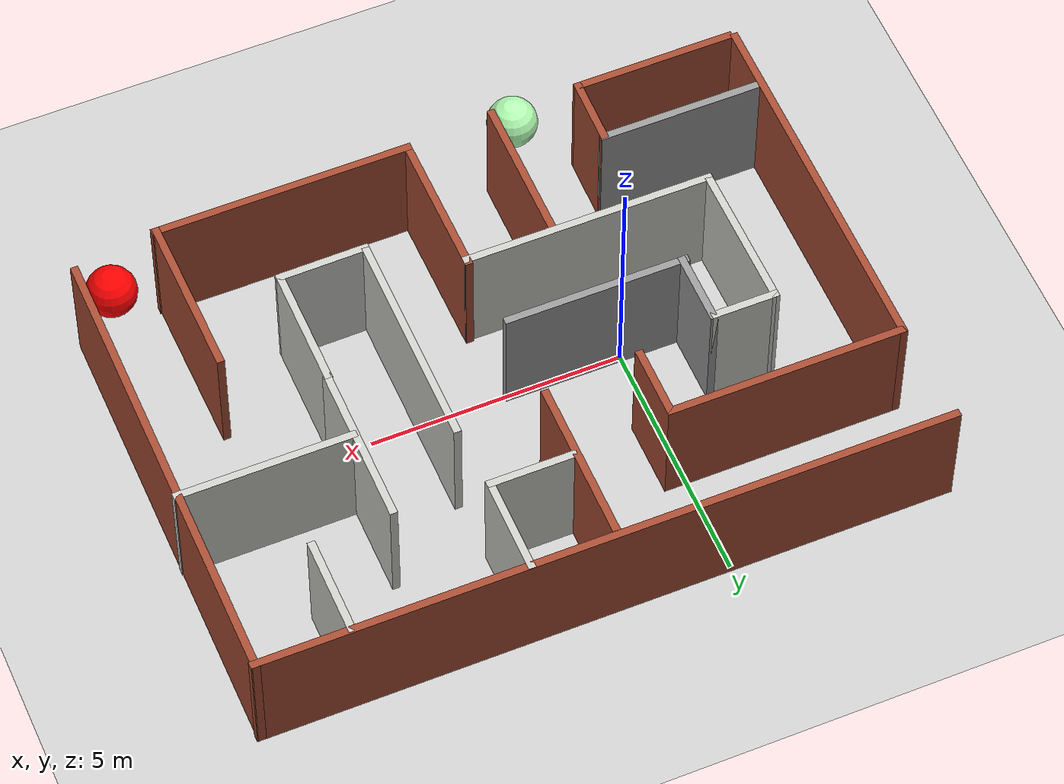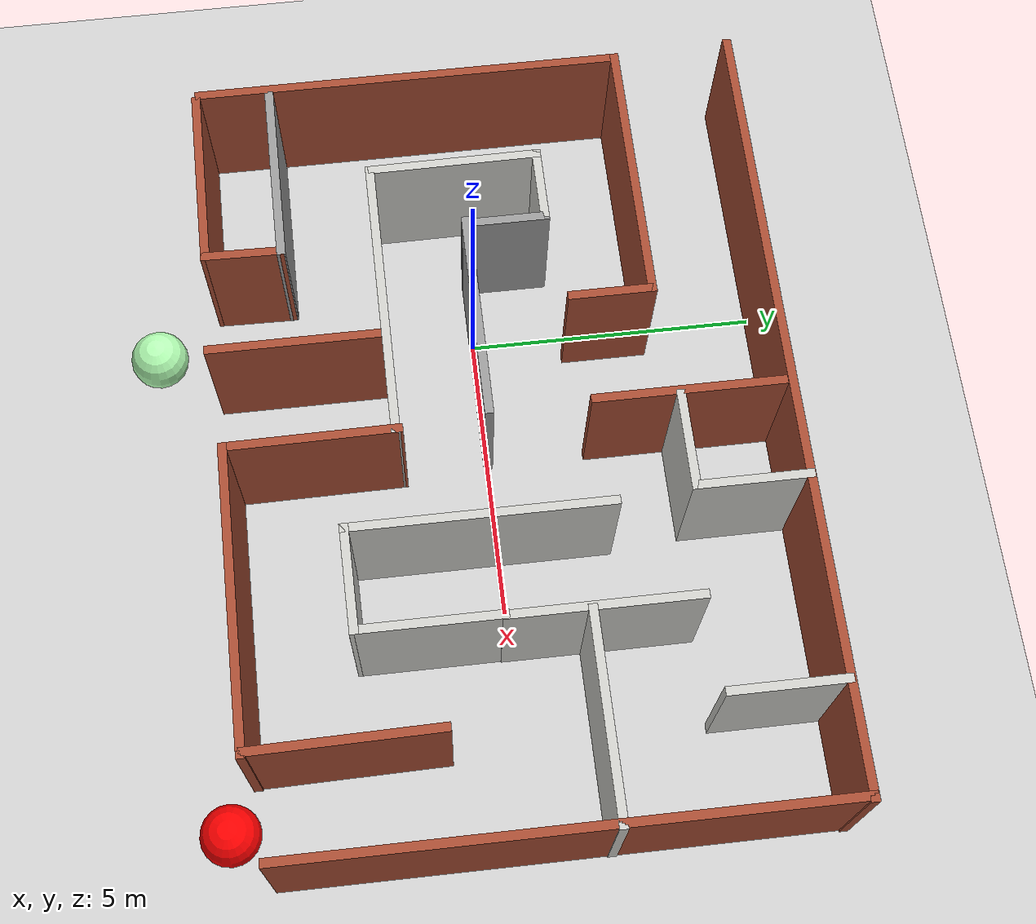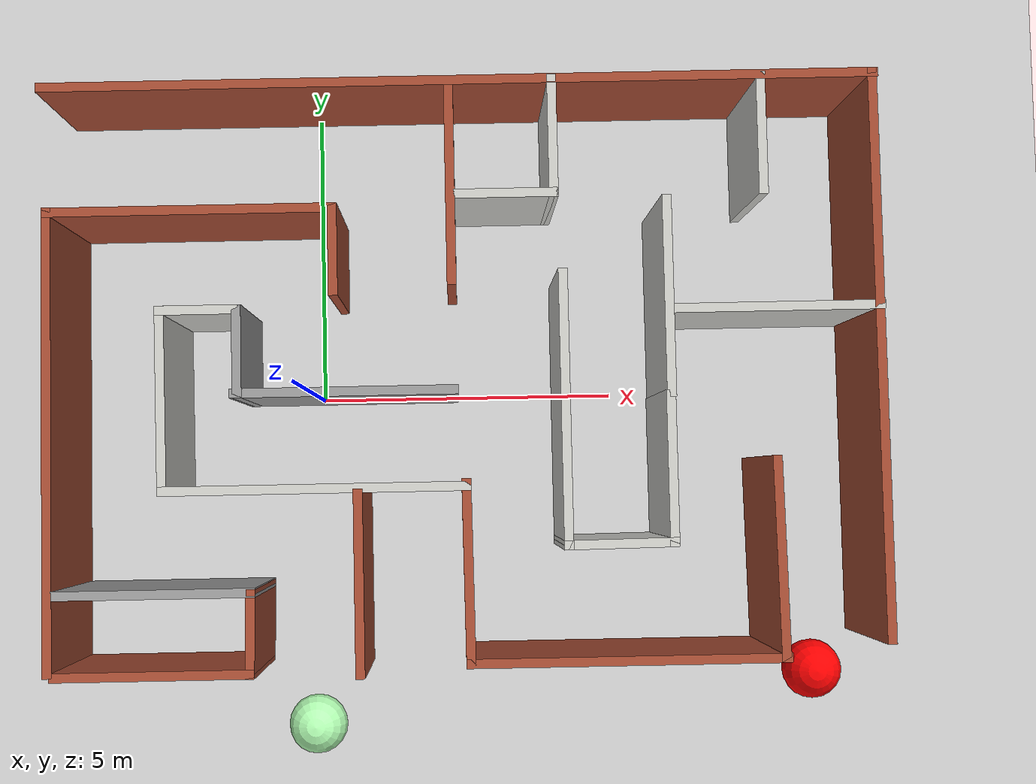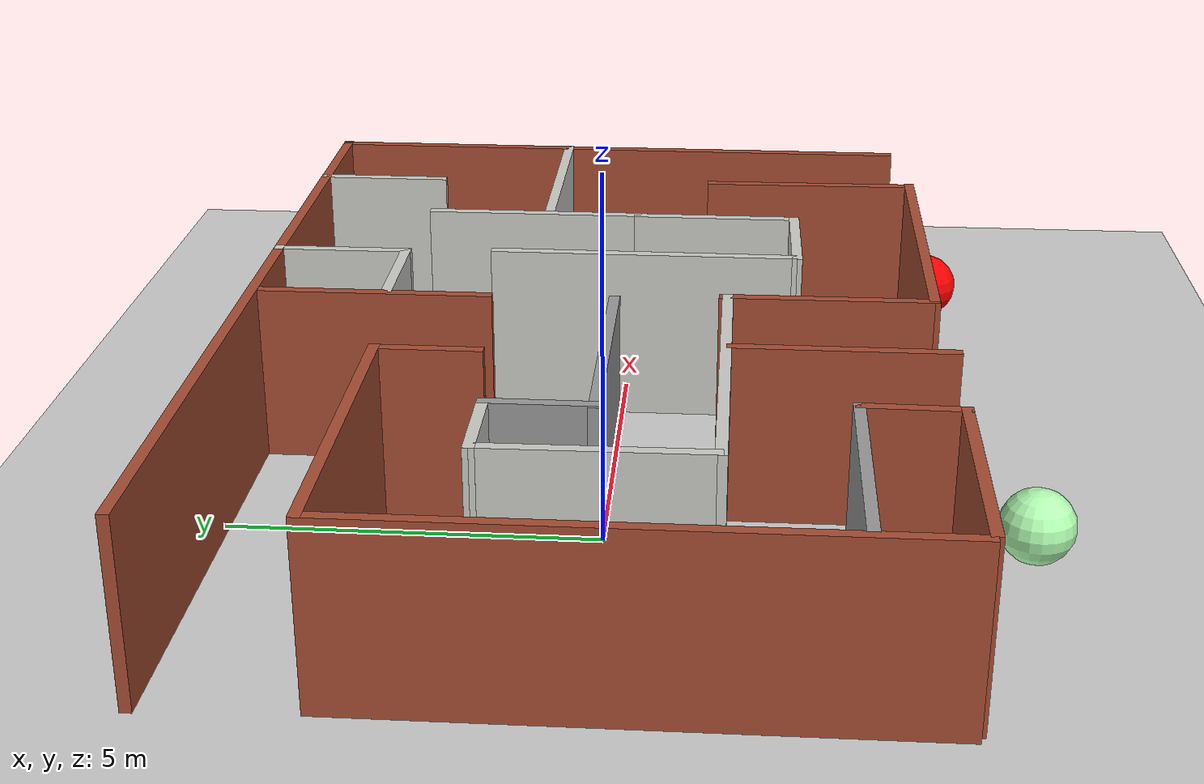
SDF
<sdf version="1.7">
 <world name="default">
  <include><uri>model://sun</uri></include>
  <include><uri>model://ground_plane</uri></include>
  <include><pose>-0.153 -5.549 0.5 0 0 0</pose><uri>model://unit_sphere_green</uri></include>
  <include><pose>8.313 -4.777 0.5 0 0 0</pose><uri>model://unit_sphere_red</uri></include>
  <include><pose>2.417 0.2725 0 0 -0 0</pose><uri>model://wall_maze</uri></include>
 </world>
</sdf>

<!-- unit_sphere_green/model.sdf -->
<sdf version='1.7'>
  <model name='unit_sphere_green'>
    <link name='link'>
      <inertial>
        <mass>1</mass>
        <inertia>
          <ixx>0.1</ixx>
          <ixy>0</ixy>
          <ixz>0</ixz>
          <iyy>0.1</iyy>
          <iyz>0</iyz>
          <izz>0.1</izz>
        </inertia>
        <pose>0 0 0 0 -0 0</pose>
      </inertial>
      <self_collide>0</self_collide>
      <enable_wind>0</enable_wind>
      <kinematic>0</kinematic>
      <pose>0 0 0 0 -0 0</pose>
      <gravity>1</gravity>
      <visual name='visual'>
        <geometry>
          <sphere>
            <radius>0.5</radius>
          </sphere>
        </geometry>
        <material>
          <script>
            <name>Gazebo/Grey</name>
            <uri>file://media/materials/scripts/gazebo.material</uri>
          </script>
          <shader type='pixel'>
            <normal_map>__default__</normal_map>
          </shader>
          <ambient>0 0.1 0 0</ambient>
          <diffuse>0.7 1 0.7 1</diffuse>
          <specular>0.01 0.01 0.01 1</specular>
          <emissive>0 0 0 1</emissive>
        </material>
        <pose>0 0 0 0 -0 0</pose>
        <transparency>0</transparency>
        <cast_shadows>1</cast_shadows>
      </visual>
      <collision name='collision'>
        <laser_retro>0</laser_retro>
        <max_contacts>10</max_contacts>
        <pose>0 0 0 0 -0 0</pose>
        <geometry>
          <sphere>
            <radius>0.5</radius>
          </sphere>
        </geometry>
        <surface>
          <friction>
            <ode>
              <mu>1</mu>
              <mu2>1</mu2>
              <fdir1>0 0 0</fdir1>
              <slip1>0</slip1>
              <slip2>0</slip2>
            </ode>
            <torsional>
              <coefficient>1</coefficient>
              <patch_radius>0</patch_radius>
              <surface_radius>0</surface_radius>
              <use_patch_radius>1</use_patch_radius>
              <ode>
                <slip>0</slip>
              </ode>
            </torsional>
          </friction>
          <bounce>
            <restitution_coefficient>0</restitution_coefficient>
            <threshold>1e+06</threshold>
          </bounce>
          <contact>
            <collide_without_contact>0</collide_without_contact>
            <collide_without_contact_bitmask>1</collide_without_contact_bitmask>
            <collide_bitmask>1</collide_bitmask>
            <ode>
              <soft_cfm>0</soft_cfm>
              <soft_erp>0.2</soft_erp>
              <kp>1e+13</kp>
              <kd>1</kd>
              <max_vel>0.01</max_vel>
              <min_depth>0</min_depth>
            </ode>
            <bullet>
              <split_impulse>1</split_impulse>
              <split_impulse_penetration_threshold>-0.01</split_impulse_penetration_threshold>
              <soft_cfm>0</soft_cfm>
              <soft_erp>0.2</soft_erp>
              <kp>1e+13</kp>
              <kd>1</kd>
            </bullet>
          </contact>
        </surface>
      </collision>
    </link>
    <static>0</static>
    <allow_auto_disable>1</allow_auto_disable>
  </model>
</sdf>

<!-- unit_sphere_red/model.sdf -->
<sdf version='1.7'>
  <model name='unit_sphere_red'>
    <link name='link_0'>
      <inertial>
        <mass>1</mass>
        <inertia>
          <ixx>0.1</ixx>
          <ixy>0</ixy>
          <ixz>0</ixz>
          <iyy>0.1</iyy>
          <iyz>0</iyz>
          <izz>0.1</izz>
        </inertia>
        <pose>0 0 0 0 -0 0</pose>
      </inertial>
      <pose>0 -0 0 0 -0 0</pose>
      <gravity>1</gravity>
      <self_collide>0</self_collide>
      <kinematic>0</kinematic>
      <enable_wind>0</enable_wind>
      <visual name='visual'>
        <pose>0 0 0 0 -0 0</pose>
        <geometry>
          <sphere>
            <radius>0.5</radius>
          </sphere>
        </geometry>
        <material>
          <lighting>1</lighting>
          <script>
            <uri>file://media/materials/scripts/gazebo.material</uri>
            <name>Gazebo/Grey</name>
          </script>
          <shader type='pixel'>
            <normal_map>__default__</normal_map>
          </shader>
          <ambient>1 0 0 0</ambient>
          <diffuse>0.7 0.7 0.7 1</diffuse>
          <specular>0.01 0.01 0.01 1</specular>
          <emissive>0 0 0 1</emissive>
        </material>
        <transparency>0</transparency>
        <cast_shadows>1</cast_shadows>
      </visual>
      <collision name='collision'>
        <laser_retro>0</laser_retro>
        <max_contacts>10</max_contacts>
        <pose>0 0 0 0 -0 0</pose>
        <geometry>
          <sphere>
            <radius>0.5</radius>
          </sphere>
        </geometry>
        <surface>
          <friction>
            <ode>
              <mu>1</mu>
              <mu2>1</mu2>
              <fdir1>0 0 0</fdir1>
              <slip1>0</slip1>
              <slip2>0</slip2>
            </ode>
            <torsional>
              <coefficient>1</coefficient>
              <patch_radius>0</patch_radius>
              <surface_radius>0</surface_radius>
              <use_patch_radius>1</use_patch_radius>
              <ode>
                <slip>0</slip>
              </ode>
            </torsional>
          </friction>
          <bounce>
            <restitution_coefficient>0</restitution_coefficient>
            <threshold>1e+06</threshold>
          </bounce>
          <contact>
            <collide_without_contact>0</collide_without_contact>
            <collide_without_contact_bitmask>1</collide_without_contact_bitmask>
            <collide_bitmask>1</collide_bitmask>
            <ode>
              <soft_cfm>0</soft_cfm>
              <soft_erp>0.2</soft_erp>
              <kp>1e+13</kp>
              <kd>1</kd>
              <max_vel>0.01</max_vel>
              <min_depth>0</min_depth>
            </ode>
            <bullet>
              <split_impulse>1</split_impulse>
              <split_impulse_penetration_threshold>-0.01</split_impulse_penetration_threshold>
              <soft_cfm>0</soft_cfm>
              <soft_erp>0.2</soft_erp>
              <kp>1e+13</kp>
              <kd>1</kd>
            </bullet>
          </contact>
        </surface>
      </collision>
    </link>
    <static>0</static>
    <allow_auto_disable>1</allow_auto_disable>
  </model>
</sdf>
